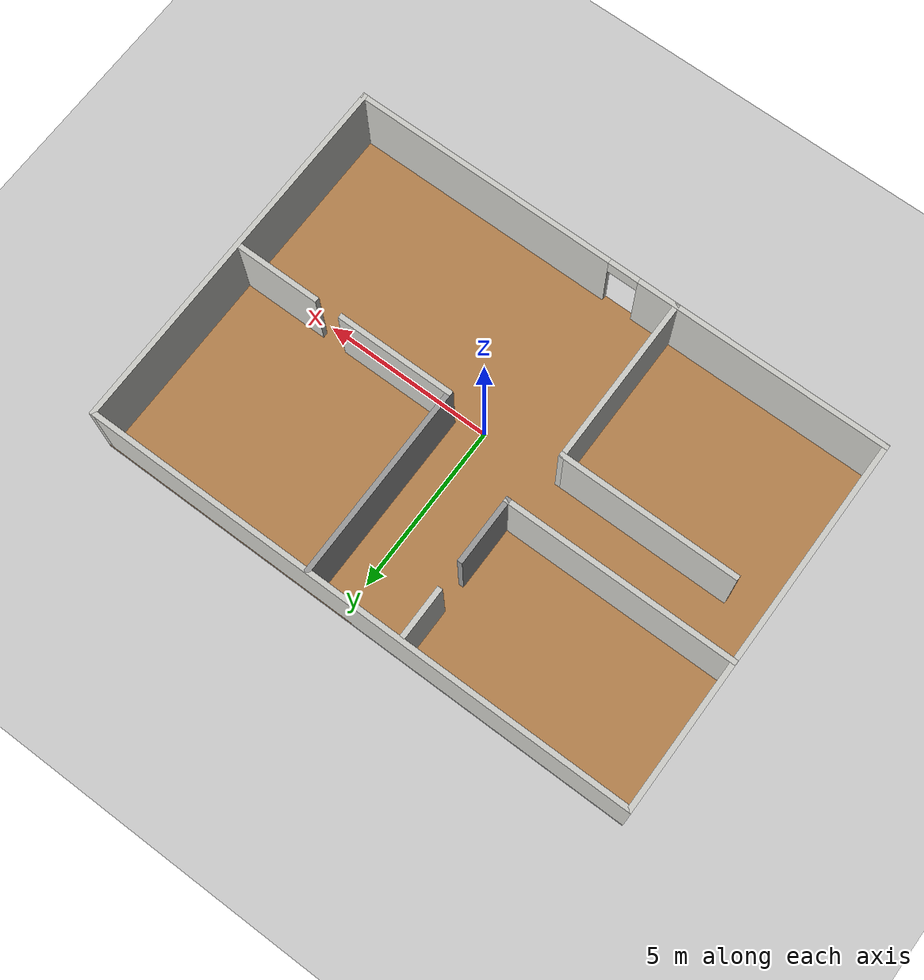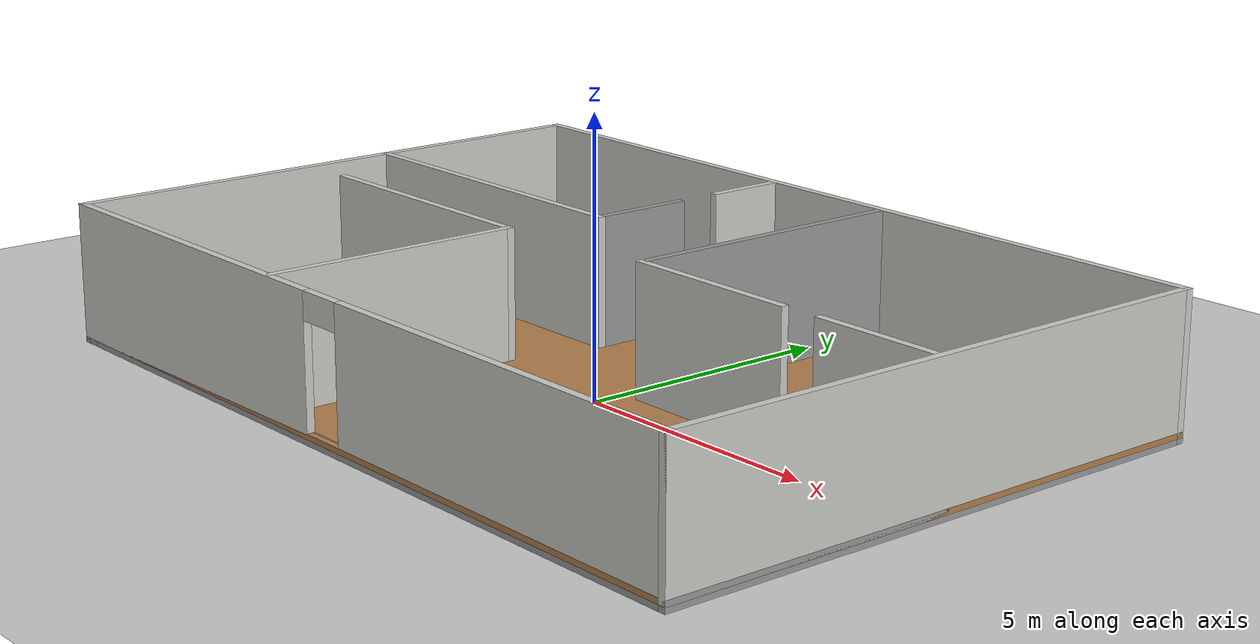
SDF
<sdf version="1.6">
 <world name="default">
  <light name="sun" type="directional">
   <pose>0 0 10 0 -0 0</pose>
   <diffuse>0.8 0.8 0.8 1</diffuse>
   <specular>0.2 0.2 0.2 1</specular>
   <attenuation>
    <range>1000</range>
    <constant>0.9</constant>
    <linear>0.01</linear>
    <quadratic>0.001</quadratic>
   </attenuation>
   <direction>-0.5 0.1 -0.9</direction>
  </light>
  <model name="ground_plane">
   <static>1</static>
   <link name="link">
    <collision name="collision">
     <geometry><plane><normal>0 0 1</normal><size>100 100</size></plane></geometry>
     <surface>
      <contact><collide_bitmask>65535</collide_bitmask></contact>
      <friction><ode><mu>100</mu><mu2>50</mu2></ode></friction>
     </surface>
    </collision>
    <visual name="visual">
     <cast_shadows>0</cast_shadows>
     <geometry><plane><normal>0 0 1</normal><size>100 100</size></plane></geometry>
     <material>
      <script><uri>file://media/materials/scripts/gazebo.material</uri><name>Gazebo/Grey</name></script>
     </material>
    </visual>
   </link>
  </model>
  <gravity>0 0 -9.8</gravity>
  <magnetic_field>6e-06 2.3e-05 -4.2e-05</magnetic_field>
  <atmosphere type="adiabatic"/>
  <physics name="default_physics" default="0" type="ode">
   <max_step_size>0.001</max_step_size>
   <real_time_factor>1</real_time_factor>
   <real_time_update_rate>1000</real_time_update_rate>
  </physics>
  <scene><ambient>0.4 0.4 0.4 1</ambient><background>0.7 0.7 0.7 1</background><shadows>1</shadows></scene>
  <audio><device>default</device></audio>
  <spherical_coordinates>
   <surface_model>EARTH_WGS84</surface_model>
   <latitude_deg>0</latitude_deg>
   <longitude_deg>0</longitude_deg>
   <elevation>0</elevation>
   <heading_deg>0</heading_deg>
  </spherical_coordinates>
  <model name="Home">
   <pose>-0.511569 0.524167 0 0 -0 0</pose>
   <link name="Floor_3">
    <collision name="Floor_3_Collision">
     <geometry><box><size>16.25 11 0.1</size></box></geometry>
     <pose>0 0 0.05 0 -0 0</pose>
    </collision>
    <visual name="Floor_3_Visual">
     <pose>0 0 0.05 0 -0 0</pose>
     <geometry><box><size>16.25 11 0.1</size></box></geometry>
     <material>
      <script><uri>file://media/materials/scripts/gazebo.material</uri><name>Gazebo/Wood</name></script>
      <ambient>1 1 1 1</ambient>
     </material>
     <meta><layer>1</layer></meta>
    </visual>
    <pose>-0 -0 0.1 0 -0 0</pose>
   </link>
   <link name="Wall_40">
    <collision name="Wall_40_Collision">
     <geometry><box><size>16 0.15 0.1</size></box></geometry>
     <pose>0 0 0.05 0 -0 0</pose>
    </collision>
    <visual name="Wall_40_Visual">
     <pose>0 0 0.05 0 -0 0</pose>
     <geometry><box><size>16 0.15 0.1</size></box></geometry>
     <material>
      <script><uri>file://media/materials/scripts/gazebo.material</uri><name>Gazebo/Grey</name></script>
      <ambient>1 1 1 1</ambient>
     </material>
     <meta><layer>0</layer></meta>
    </visual>
    <pose>0.125 -5.425 0 0 -0 0</pose>
   </link>
   <link name="Wall_41">
    <collision name="Wall_41_Collision">
     <geometry><box><size>11 0.15 0.1</size></box></geometry>
     <pose>0 0 0.05 0 -0 0</pose>
    </collision>
    <visual name="Wall_41_Visual">
     <pose>0 0 0.05 0 -0 0</pose>
     <geometry><box><size>11 0.15 0.1</size></box></geometry>
     <material>
      <script><uri>file://media/materials/scripts/gazebo.material</uri><name>Gazebo/Grey</name></script>
      <ambient>1 1 1 1</ambient>
     </material>
     <meta><layer>0</layer></meta>
    </visual>
    <pose>8.05 -0 0 0 -0 1.5708</pose>
   </link>
   <link name="Wall_42">
    <collision name="Wall_42_Collision">
     <geometry><box><size>16.25 0.15 0.1</size></box></geometry>
     <pose>0 0 0.05 0 -0 0</pose>
    </collision>
    <visual name="Wall_42_Visual">
     <pose>0 0 0.05 0 -0 0</pose>
     <geometry><box><size>16.25 0.15 0.1</size></box></geometry>
     <material>
      <script><uri>file://media/materials/scripts/gazebo.material</uri><name>Gazebo/Grey</name></script>
      <ambient>1 1 1 1</ambient>
     </material>
     <meta><layer>0</layer></meta>
    </visual>
    <pose>-0 5.425 0 0 -0 3.14159</pose>
   </link>
   <link name="Wall_43">
    <collision name="Wall_43_Collision">
     <geometry><box><size>11 0.15 0.1</size></box></geometry>
     <pose>0 0 0.05 0 -0 0</pose>
    </collision>
    <visual name="Wall_43_Visual">
     <pose>0 0 0.05 0 -0 0</pose>
     <geometry><box><size>11 0.15 0.1</size></box></geometry>
     <material>
      <script><uri>file://media/materials/scripts/gazebo.material</uri><name>Gazebo/Grey</name></script>
      <ambient>1 1 1 1</ambient>
     </material>
     <meta><layer>0</layer></meta>
    </visual>
    <pose>-8.05 -0 0 0 -0 -1.5708</pose>
   </link>
   <link name="Wall_44">
    <collision name="Wall_44_Collision">
     <geometry><box><size>0.4 0.15 0.1</size></box></geometry>
     <pose>0 0 0.05 0 -0 0</pose>
    </collision>
    <visual name="Wall_44_Visual">
     <pose>0 0 0.05 0 -0 0</pose>
     <geometry><box><size>0.4 0.15 0.1</size></box></geometry>
     <material>
      <script><uri>file://media/materials/scripts/gazebo.material</uri><name>Gazebo/Grey</name></script>
      <ambient>1 1 1 1</ambient>
     </material>
     <meta><layer>0</layer></meta>
    </visual>
    <pose>-7.925 -5.425 0 0 -0 0</pose>
   </link>
   <link name="Wall_56">
    <collision name="Wall_56_Collision">
     <geometry><box><size>16 0.15 0.1</size></box></geometry>
     <pose>0 0 0.05 0 -0 0</pose>
    </collision>
    <visual name="Wall_56_Visual">
     <pose>0 0 0.05 0 -0 0</pose>
     <geometry><box><size>16 0.15 0.1</size></box></geometry>
     <material>
      <script><uri>file://media/materials/scripts/gazebo.material</uri><name>Gazebo/Grey</name></script>
      <ambient>1 1 1 1</ambient>
     </material>
     <meta><layer>1</layer></meta>
    </visual>
    <pose>0.125 -5.425 0.1 0 -0 0</pose>
   </link>
   <link name="Wall_57">
    <collision name="Wall_57_Collision">
     <geometry><box><size>11 0.15 0.1</size></box></geometry>
     <pose>0 0 0.05 0 -0 0</pose>
    </collision>
    <visual name="Wall_57_Visual">
     <pose>0 0 0.05 0 -0 0</pose>
     <geometry><box><size>11 0.15 0.1</size></box></geometry>
     <material>
      <script><uri>file://media/materials/scripts/gazebo.material</uri><name>Gazebo/Grey</name></script>
      <ambient>1 1 1 1</ambient>
     </material>
     <meta><layer>1</layer></meta>
    </visual>
    <pose>8.05 -0 0.1 0 -0 1.5708</pose>
   </link>
   <link name="Wall_58">
    <collision name="Wall_58_Collision">
     <geometry><box><size>16.25 0.15 0.1</size></box></geometry>
     <pose>0 0 0.05 0 -0 0</pose>
    </collision>
    <visual name="Wall_58_Visual">
     <pose>0 0 0.05 0 -0 0</pose>
     <geometry><box><size>16.25 0.15 0.1</size></box></geometry>
     <material>
      <script><uri>file://media/materials/scripts/gazebo.material</uri><name>Gazebo/Grey</name></script>
      <ambient>1 1 1 1</ambient>
     </material>
     <meta><layer>1</layer></meta>
    </visual>
    <pose>-0 5.425 0.1 0 -0 3.14159</pose>
   </link>
   <link name="Wall_59">
    <collision name="Wall_59_Collision">
     <geometry><box><size>11 0.15 0.1</size></box></geometry>
     <pose>0 0 0.05 0 -0 0</pose>
    </collision>
    <visual name="Wall_59_Visual">
     <pose>0 0 0.05 0 -0 0</pose>
     <geometry><box><size>11 0.15 0.1</size></box></geometry>
     <material>
      <script><uri>file://media/materials/scripts/gazebo.material</uri><name>Gazebo/Grey</name></script>
      <ambient>1 1 1 1</ambient>
     </material>
     <meta><layer>1</layer></meta>
    </visual>
    <pose>-8.05 -0 0.1 0 -0 -1.5708</pose>
   </link>
   <link name="Wall_60">
    <collision name="Wall_60_Collision">
     <geometry><box><size>0.4 0.15 0.1</size></box></geometry>
     <pose>0 0 0.05 0 -0 0</pose>
    </collision>
    <visual name="Wall_60_Visual">
     <pose>0 0 0.05 0 -0 0</pose>
     <geometry><box><size>0.4 0.15 0.1</size></box></geometry>
     <material>
      <script><uri>file://media/materials/scripts/gazebo.material</uri><name>Gazebo/Grey</name></script>
      <ambient>1 1 1 1</ambient>
     </material>
     <meta><layer>1</layer></meta>
    </visual>
    <pose>-7.925 -5.425 0.1 0 -0 0</pose>
   </link>
   <link name="Wall_61">
    <collision name="Wall_61_Collision">
     <geometry><box><size>11 0.15 2.5</size></box></geometry>
     <pose>0 0 1.25 0 -0 0</pose>
    </collision>
    <visual name="Wall_61_Visual">
     <pose>0 0 1.25 0 -0 0</pose>
     <geometry><box><size>11 0.15 2.5</size></box></geometry>
     <material>
      <script><uri>file://media/materials/scripts/gazebo.material</uri><name>Gazebo/CeilingTiled</name></script>
      <ambient>1 1 1 1</ambient>
     </material>
     <meta><layer>1</layer></meta>
    </visual>
    <pose>-8.05 -0 0.1 0 -0 -1.5708</pose>
   </link>
   <link name="Wall_62">
    <pose>-0 -5.425 0.1 0 -0 0</pose>
    <visual name="Wall_62_Visual_0">
     <pose>-4.41027 0 1.25 0 -0 0</pose>
     <geometry><box><size>7.42945 0.15 2.5</size></box></geometry>
     <material>
      <script><uri>file://media/materials/scripts/gazebo.material</uri><name>Gazebo/CeilingTiled</name></script>
      <ambient>1 1 1 1</ambient>
     </material>
     <meta><layer>1</layer></meta>
    </visual>
    <collision name="Wall_62_Collision_0">
     <geometry><box><size>7.42945 0.15 2.5</size></box></geometry>
     <pose>-4.41027 0 1.25 0 -0 0</pose>
    </collision>
    <visual name="Wall_62_Visual_1">
     <pose>4.16473 0 1.25 0 -0 0</pose>
     <geometry><box><size>7.92055 0.15 2.5</size></box></geometry>
     <material>
      <script><uri>file://media/materials/scripts/gazebo.material</uri><name>Gazebo/CeilingTiled</name></script>
      <ambient>1 1 1 1</ambient>
     </material>
     <meta><layer>1</layer></meta>
    </visual>
    <collision name="Wall_62_Collision_1">
     <geometry><box><size>7.92055 0.15 2.5</size></box></geometry>
     <pose>4.16473 0 1.25 0 -0 0</pose>
    </collision>
    <visual name="Wall_62_Visual_2">
     <pose>-0.245546 0 2.25 0 -0 0</pose>
     <geometry><box><size>0.9 0.15 0.5</size></box></geometry>
     <material>
      <script><uri>file://media/materials/scripts/gazebo.material</uri><name>Gazebo/CeilingTiled</name></script>
      <ambient>1 1 1 1</ambient>
     </material>
     <meta><layer>1</layer></meta>
    </visual>
    <collision name="Wall_62_Collision_2">
     <geometry><box><size>0.9 0.15 0.5</size></box></geometry>
     <pose>-0.245546 0 2.25 0 -0 0</pose>
    </collision>
   </link>
   <link name="Wall_63">
    <collision name="Wall_63_Collision">
     <geometry><box><size>11 0.15 2.5</size></box></geometry>
     <pose>0 0 1.25 0 -0 0</pose>
    </collision>
    <visual name="Wall_63_Visual">
     <pose>0 0 1.25 0 -0 0</pose>
     <geometry><box><size>11 0.15 2.5</size></box></geometry>
     <material>
      <script><uri>file://media/materials/scripts/gazebo.material</uri><name>Gazebo/CeilingTiled</name></script>
      <ambient>1 1 1 1</ambient>
     </material>
     <meta><layer>1</layer></meta>
    </visual>
    <pose>8.05 -0 0.1 0 -0 1.5708</pose>
   </link>
   <link name="Wall_64">
    <collision name="Wall_64_Collision">
     <geometry><box><size>16.25 0.15 2.5</size></box></geometry>
     <pose>0 0 1.25 0 -0 0</pose>
    </collision>
    <visual name="Wall_64_Visual">
     <pose>0 0 1.25 0 -0 0</pose>
     <geometry><box><size>16.25 0.15 2.5</size></box></geometry>
     <material>
      <script><uri>file://media/materials/scripts/gazebo.material</uri><name>Gazebo/CeilingTiled</name></script>
      <ambient>1 1 1 1</ambient>
     </material>
     <meta><layer>1</layer></meta>
    </visual>
    <pose>-0 5.425 0.1 0 -0 3.14159</pose>
   </link>
   <link name="Wall_66">
    <collision name="Wall_66_Collision">
     <geometry><box><size>5 0.15 2.5</size></box></geometry>
     <pose>0 0 1.25 0 -0 0</pose>
    </collision>
    <visual name="Wall_66_Visual">
     <pose>0 0 1.25 0 -0 0</pose>
     <geometry><box><size>5 0.15 2.5</size></box></geometry>
     <material>
      <script><uri>file://media/materials/scripts/gazebo.material</uri><name>Gazebo/CeilingTiled</name></script>
      <ambient>1 1 1 1</ambient>
     </material>
     <meta><layer>1</layer></meta>
    </visual>
    <pose>-1.84156 -2.97388 0.1 0 -0 1.5708</pose>
   </link>
   <link name="Wall_67">
    <collision name="Wall_67_Collision">
     <geometry><box><size>5.25 0.15 2.5</size></box></geometry>
     <pose>0 0 1.25 0 -0 0</pose>
    </collision>
    <visual name="Wall_67_Visual">
     <pose>0 0 1.25 0 -0 0</pose>
     <geometry><box><size>5.25 0.15 2.5</size></box></geometry>
     <material>
      <script><uri>file://media/materials/scripts/gazebo.material</uri><name>Gazebo/CeilingTiled</name></script>
      <ambient>1 1 1 1</ambient>
     </material>
     <meta><layer>1</layer></meta>
    </visual>
    <pose>-4.39156 -0.548884 0.1 0 -0 3.14159</pose>
   </link>
   <link name="Wall_69">
    <collision name="Wall_69_Collision">
     <geometry><box><size>6.75 0.15 2.5</size></box></geometry>
     <pose>0 0 1.25 0 -0 0</pose>
    </collision>
    <visual name="Wall_69_Visual">
     <pose>0 0 1.25 0 -0 0</pose>
     <geometry><box><size>6.75 0.15 2.5</size></box></geometry>
     <material>
      <script><uri>file://media/materials/scripts/gazebo.material</uri><name>Gazebo/CeilingTiled</name></script>
      <ambient>1 1 1 1</ambient>
     </material>
     <meta><layer>1</layer></meta>
    </visual>
    <pose>-4.7394 1.17136 0.1 0 -0 0</pose>
   </link>
   <link name="Wall_70">
    <collision name="Wall_70_Collision">
     <geometry><box><size>2 0.15 2.5</size></box></geometry>
     <pose>0 0 1.25 0 -0 0</pose>
    </collision>
    <visual name="Wall_70_Visual">
     <pose>0 0 1.25 0 -0 0</pose>
     <geometry><box><size>2 0.15 2.5</size></box></geometry>
     <material>
      <script><uri>file://media/materials/scripts/gazebo.material</uri><name>Gazebo/Grey</name></script>
      <ambient>1 1 1 1</ambient>
     </material>
     <meta><layer>1</layer></meta>
    </visual>
    <pose>-1.43941 2.09637 0.1 0 -0 1.5708</pose>
   </link>
   <link name="Wall_72">
    <collision name="Wall_72_Collision">
     <geometry><box><size>1.5 0.15 2.5</size></box></geometry>
     <pose>0 0 1.25 0 -0 0</pose>
    </collision>
    <visual name="Wall_72_Visual">
     <pose>0 0 1.25 0 -0 0</pose>
     <geometry><box><size>1.5 0.15 2.5</size></box></geometry>
     <material>
      <script><uri>file://media/materials/scripts/gazebo.material</uri><name>Gazebo/CeilingTiled</name></script>
      <ambient>1 1 1 1</ambient>
     </material>
     <meta><layer>1</layer></meta>
    </visual>
    <pose>-1.44256 4.61279 0.1 0 -0 1.5708</pose>
   </link>
   <link name="Wall_74">
    <collision name="Wall_74_Collision">
     <geometry><box><size>5.75 0.15 2.5</size></box></geometry>
     <pose>0 0 1.25 0 -0 0</pose>
    </collision>
    <visual name="Wall_74_Visual">
     <pose>0 0 1.25 0 -0 0</pose>
     <geometry><box><size>5.75 0.15 2.5</size></box></geometry>
     <material>
      <script><uri>file://media/materials/scripts/gazebo.material</uri><name>Gazebo/Grey</name></script>
      <ambient>1 1 1 1</ambient>
     </material>
     <meta><layer>1</layer></meta>
    </visual>
    <pose>1.35047 2.6008 0.1 0 -0 -1.5708</pose>
   </link>
   <link name="Wall_75">
    <collision name="Wall_75_Collision">
     <geometry><box><size>3.5 0.15 2.5</size></box></geometry>
     <pose>0 0 1.25 0 -0 0</pose>
    </collision>
    <visual name="Wall_75_Visual">
     <pose>0 0 1.25 0 -0 0</pose>
     <geometry><box><size>3.5 0.15 2.5</size></box></geometry>
     <material>
      <script><uri>file://media/materials/scripts/gazebo.material</uri><name>Gazebo/CeilingTiled</name></script>
      <ambient>1 1 1 1</ambient>
     </material>
     <meta><layer>1</layer></meta>
    </visual>
    <pose>3.02547 -0.199203 0.1 0 -0 0</pose>
   </link>
   <link name="Wall_77">
    <collision name="Wall_77_Collision">
     <geometry><box><size>2.5 0.15 2.5</size></box></geometry>
     <pose>0 0 1.25 0 -0 0</pose>
    </collision>
    <visual name="Wall_77_Visual">
     <pose>0 0 1.25 0 -0 0</pose>
     <geometry><box><size>2.5 0.15 2.5</size></box></geometry>
     <material>
      <script><uri>file://media/materials/scripts/gazebo.material</uri><name>Gazebo/CeilingTiled</name></script>
      <ambient>1 1 1 1</ambient>
     </material>
     <meta><layer>1</layer></meta>
    </visual>
    <pose>6.7283 -0.185245 0.1 0 -0 0</pose>
   </link>
   <static>1</static>
  </model>
 </world>
</sdf>
